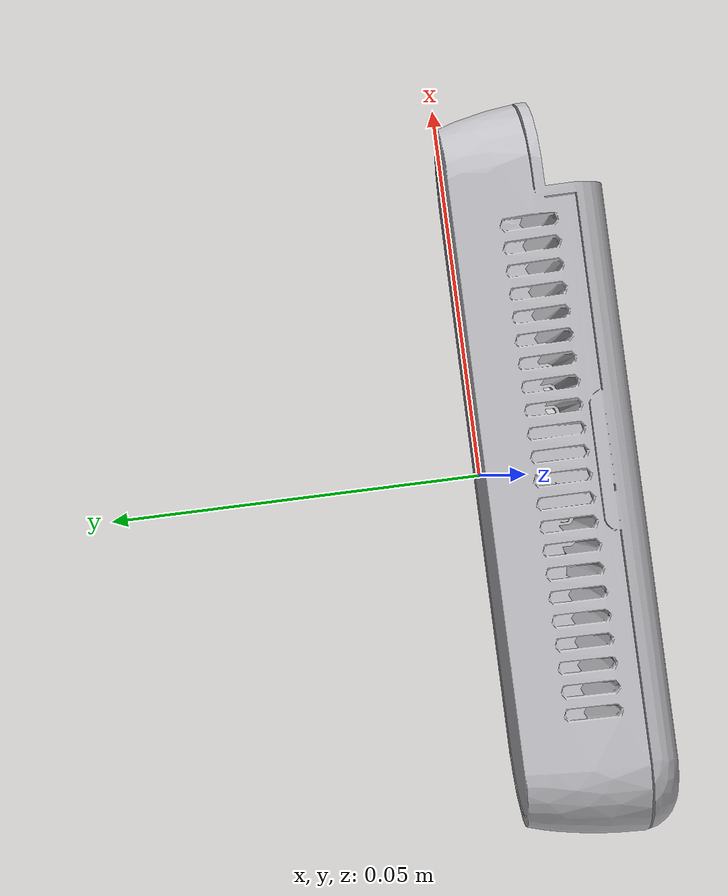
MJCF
<mujoco model="d415">
  <compiler angle="radian" meshdir="meshes" autolimits="true"/>

  <asset>
    <mesh name="d415_mesh" file="d415.obj"/>
    <material name="d415_body" rgba="0.75 0.75 0.77 1" specular="0.4" shininess="0.3"/>
  </asset>

  <worldbody>
    <!-- quat reorients the mount so the lens looks along +y at rpy [0,0,0] (see header). -->
    <body name="mount" quat="0 0 0.70710678 0.70710678">
      <geom name="d415_visual" type="mesh" mesh="d415_mesh" material="d415_body"
            contype="0" conaffinity="0"/>
      <!-- Collision box wrapping the mesh (long axis x, ~99x23x20 mm); mesh sits behind the lens
           face so the body is centred at z=-0.01. -->
      <geom name="d415_collision" type="box" pos="0 0 -0.01" size="0.0495 0.0115 0.01" group="3"/>
      <!-- Colour camera on the front (+z) lens face, looking outward (+z). fovy 42.5 deg = the D415
           colour vertical FOV. -->
      <camera name="d415_color" pos="0 0 0.005" xyaxes="-1 0 0 0 1 0"
              fovy="42.5" resolution="640 480"/>
    </body>
  </worldbody>
</mujoco>
